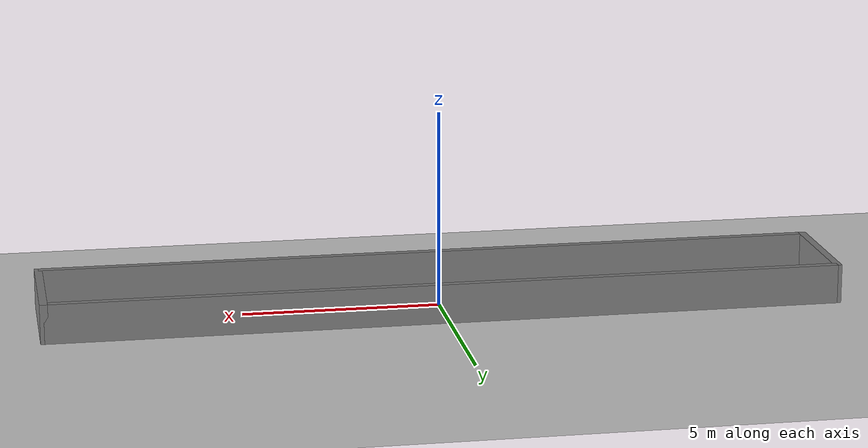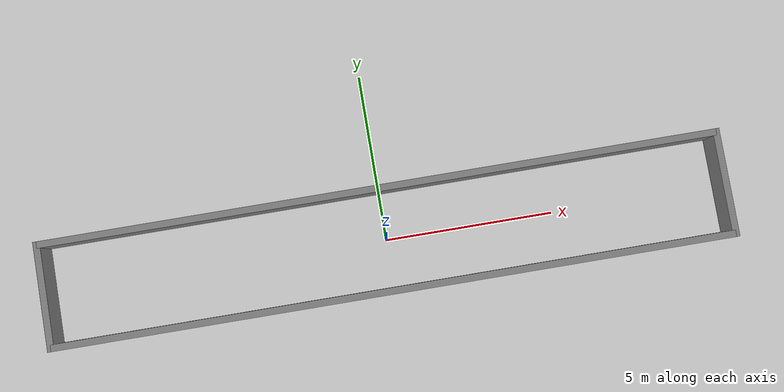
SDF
<?xml version="1.0" ?>
<sdf version="1.7">
  <world name="corridor">
    <physics type="ode">
      <max_step_size>0.001</max_step_size>
      <real_time_factor>1.0</real_time_factor>
    </physics>

    <!-- Ground plane -->
    <include>
      <uri>model://ground_plane</uri>
    </include>

    <!-- Sun -->
    <include>
      <uri>model://sun</uri>
    </include>

    <!-- Corridor walls -->
    <!-- Left wall -->
    <model name="wall_left">
      <static>true</static>
      <link name="link">
        <pose>0 1.5 0.5 0 0 0</pose>
        <collision name="collision">
          <geometry>
            <box>
              <size>20 0.2 1</size>
            </box>
          </geometry>
        </collision>
        <visual name="visual">
          <geometry>
            <box>
              <size>20 0.2 1</size>
            </box>
          </geometry>
          <material>
            <ambient>0.5 0.5 0.5 1</ambient>
          </material>
        </visual>
      </link>
    </model>

    <!-- Right wall -->
    <model name="wall_right">
      <static>true</static>
      <link name="link">
        <pose>0 -1.5 0.5 0 0 0</pose>
        <collision name="collision">
          <geometry>
            <box>
              <size>20 0.2 1</size>
            </box>
          </geometry>
        </collision>
        <visual name="visual">
          <geometry>
            <box>
              <size>20 0.2 1</size>
            </box>
          </geometry>
          <material>
            <ambient>0.5 0.5 0.5 1</ambient>
          </material>
        </visual>
      </link>
    </model>

    <!-- End walls -->
    <model name="wall_end_a">
      <static>true</static>
      <link name="link">
        <pose>-10 0 0.5 0 0 0</pose>
        <collision name="collision">
          <geometry>
            <box>
              <size>0.2 3.2 1</size>
            </box>
          </geometry>
        </collision>
        <visual name="visual">
          <geometry>
            <box>
              <size>0.2 3.2 1</size>
            </box>
          </geometry>
          <material>
            <ambient>0.5 0.5 0.5 1</ambient>
          </material>
        </visual>
      </link>
    </model>

    <model name="wall_end_b">
      <static>true</static>
      <link name="link">
        <pose>10 0 0.5 0 0 0</pose>
        <collision name="collision">
          <geometry>
            <box>
              <size>0.2 3.2 1</size>
            </box>
          </geometry>
        </collision>
        <visual name="visual">
          <geometry>
            <box>
              <size>0.2 3.2 1</size>
            </box>
          </geometry>
          <material>
            <ambient>0.5 0.5 0.5 1</ambient>
          </material>
        </visual>
      </link>
    </model>
  </world>
</sdf>
